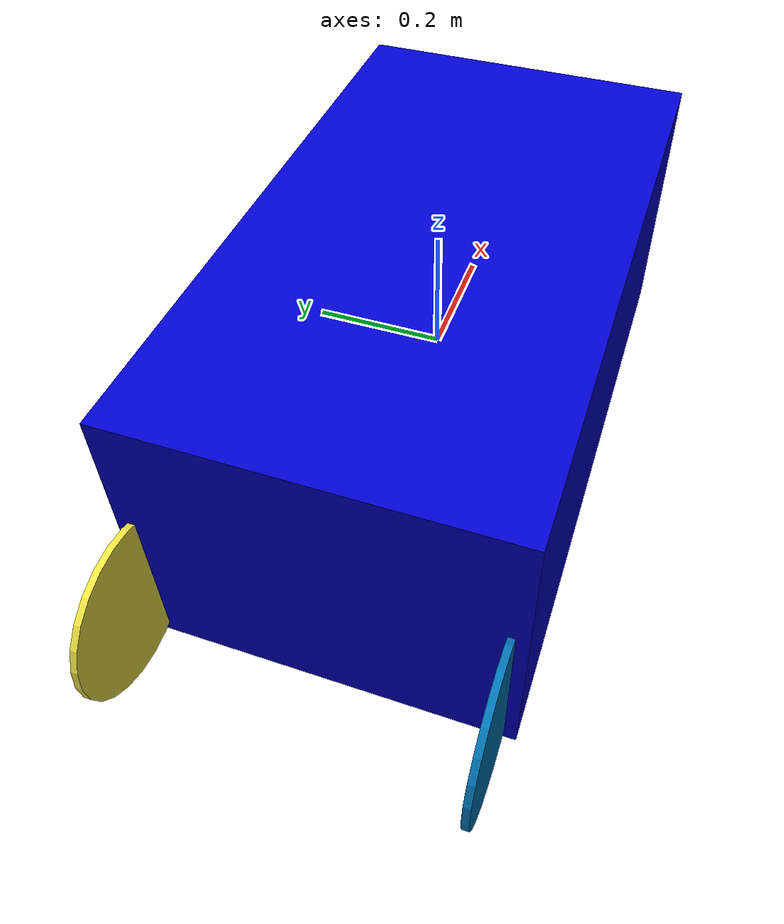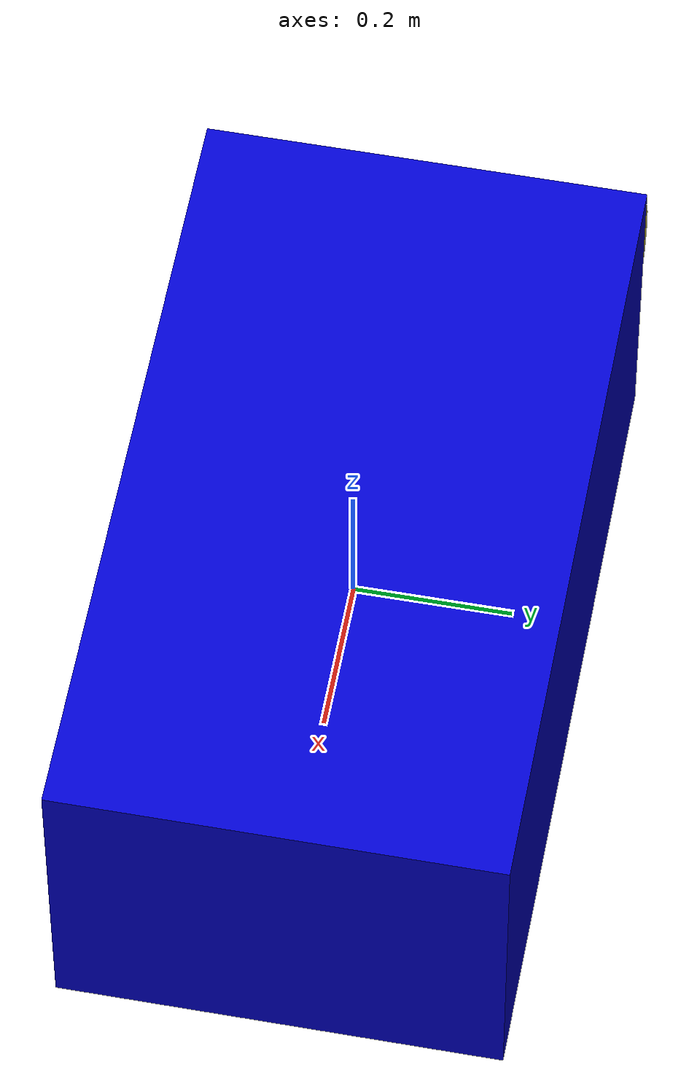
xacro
<?xml version="1.0" encoding="UTF-8" ?>
<!--this xacro file is for the new base design-->
<robot name="prototype2" xmlns:xacro="https://www.ros.org/wiki/xacro">
<!--    xacro file defining the chasis-->
    <xacro:include filename="$(find mobileman_navigation)/urdf/chassis_flexible.xacro"/>
<!--    defining the parameters of the robot -->
    <xacro:property name="robot_name" value="prototype2"/>
    <xacro:property name="length" value="1.0"/>
    <xacro:property name="width" value="1.0"/>

    <!--adding the base system-->
    <xacro:chassis length="${length}" width="0.56" height="0.45"/>

    <!--    adding wheels-->
    <xacro:include filename="$(find mobileman_navigation)/urdf/wheels.xacro"/>

    <xacro:link_wheel name="front_left" radius="0.2155"/>
    <xacro:joint_wheel name="front_left" origin_xyz="0 0.257 -0.0"/>

    <xacro:link_wheel name="front_right" radius="0.2155"/>
    <xacro:joint_wheel name="front_right" origin_xyz="0 -0.257 -0.0"/>

    <xacro:link_wheel name="rear_left" radius="0.131"/>
    <xacro:joint_wheel name="rear_left" origin_xyz="-0.547 0.257 -0.0845"/>

    <xacro:link_wheel name="rear_right" radius="0.131"/>
    <xacro:joint_wheel name="rear_right" origin_xyz="-0.547 -0.257 -0.0845"/>

</robot>

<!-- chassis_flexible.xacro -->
<robot xmlns:xacro="https://www.ros.org/wiki/xacro">
    <material name="blue">
        <color rgba="0 0 0.8 1"/>
    </material>
    <material name="red">
        <color rgba="0.8 0 0 1"/>
    </material>
    <material name="green">
        <color rgba="0 0.8 0 1"/>
    </material>
    <xacro:macro name="chassis" params="length width height">
        <link name="base_link">
<!--            ignoring inertial for rviz model-->
            <!--        adding visual result-->
            <visual name="chassis_visual">
                <origin rpy="0 0 0" xyz="0 0 0" />
                <geometry>
                    <box size="${length} ${width} ${height}"/>
                </geometry>
                <material name="blue"/>
            </visual>
        </link>

<!--        adding wheels-->

    </xacro:macro>
</robot>

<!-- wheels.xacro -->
<robot xmlns:xacro="http://www.ros.org/wiki/xacro">
    <xacro:macro name ="link_wheel" params="name radius">
        <link name= "${name}_link">
            <inertial>
                <mass value ="2"/>
                <origin rpy ="1.57 0 0" xyz="0 0 0"/>
                <inertia ixx="${1/12 * 8 * (3 * radius * radius + 0.085 * 0.085)}" ixy ="0" ixz="0"
                         iyy="${1/12 * 8 * (3 * radius * radius + 0.085 * 0.085)}"
                         iyz="0"
                         izz="${0.5 * 8 * radius * radius}"/>
            </inertial>

            <visual>
                <origin rpy="1.57 0 0" xyz="0 0 0"/>
                <geometry>
                    <cylinder length="0.01" radius="${radius}"/>
                </geometry>
            </visual>

            <collision>
                <origin rpy="1.57 0 0" xyz="0 0 0"/>
                <geometry>
                    <cylinder length="0.085" radius="${radius + 0.001}"/>
                </geometry>
            </collision>
        </link>
    </xacro:macro>
    <xacro:macro name="joint_wheel" params="name origin_xyz">
        <joint name="${name}_joint" type="continuous">
            <origin rpy="0 0 0" xyz="${origin_xyz}"/>
            <child link="${name}_link"/>
            <parent link="base_link"/>
            <axis rpy="0 0 0" xyz="0 1 0"/>
            <limit effort="10000" velocity="1000"/>
            <joint_properties damping="0" friction="0"/>
        </joint>
    </xacro:macro>
</robot>
